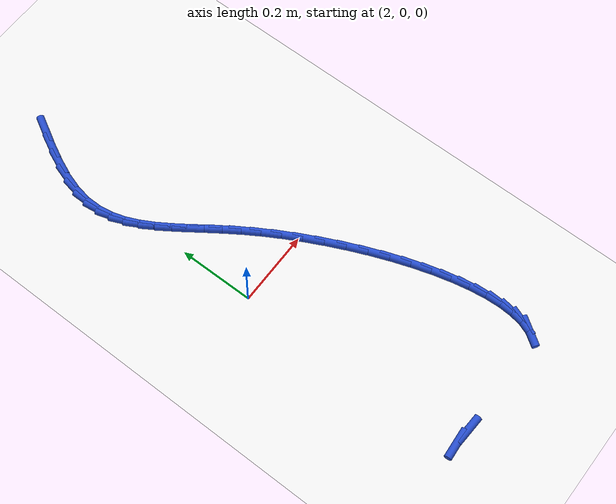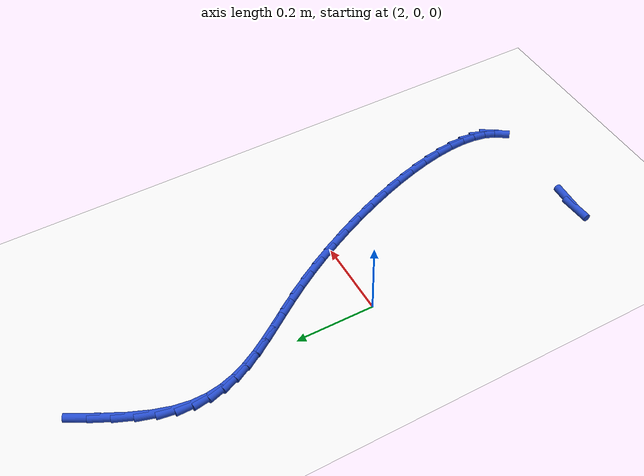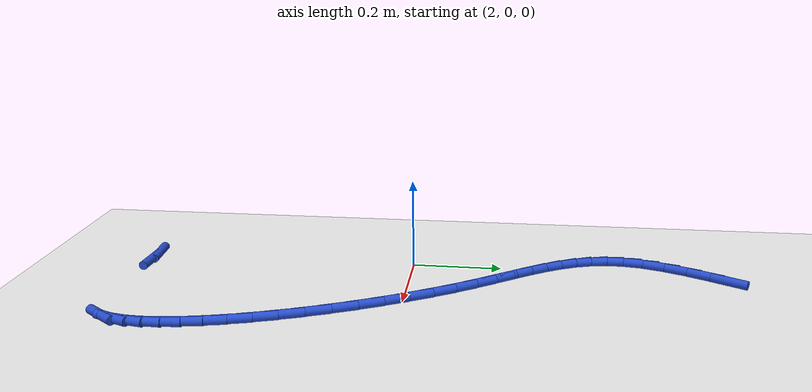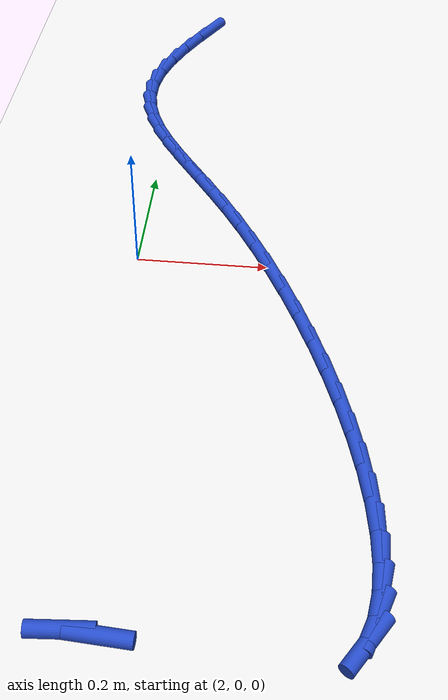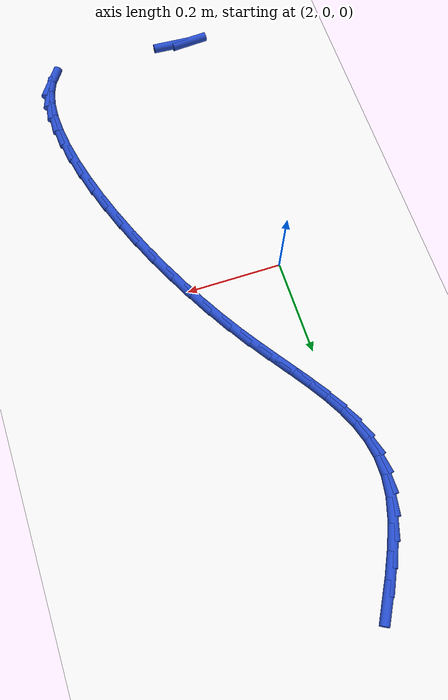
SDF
<sdf version="1.6">
 <world name="default">
  <model name="ground_plane">
   <static>1</static>
   <link name="link">
    <collision name="collision">
     <geometry><plane><normal>0 0 1</normal><size>100 100</size></plane></geometry>
     <surface><friction><ode><mu>100</mu><mu2>50</mu2></ode></friction></surface>
    </collision>
    <visual name="visual">
     <cast_shadows>0</cast_shadows>
     <geometry><plane><normal>0 0 1</normal><size>100 100</size></plane></geometry>
     <material>
      <script><uri>file://media/materials/scripts/gazebo.material</uri><name>Gazebo/WhiteGlow</name></script>
     </material>
    </visual>
   </link>
  </model>
  <model name="line">
   <link name="link_83">
    <pose>2.0431133323476156 0.6932985555934026 0.01 0 1.57 1.0614998646317197</pose>
    <collision name="collision">
     <geometry><cylinder><radius>0.01</radius><length>0.08</length></cylinder></geometry>
    </collision>
    <visual name="visual">
     <material>
      <script><name>Gazebo/Blue</name><uri>file://media/materials/scripts/gazebo.material</uri></script>
     </material>
     <geometry><cylinder><radius>0.01</radius><length>0.08</length></cylinder></geometry>
    </visual>
   </link>
   <link name="link_84">
    <pose>2.017967462171826 0.6482694091060096 0.01 0 1.57 1.1041395100261295</pose>
    <collision name="collision">
     <geometry><cylinder><radius>0.01</radius><length>0.08</length></cylinder></geometry>
    </collision>
    <visual name="visual">
     <material>
      <script><name>Gazebo/Blue</name><uri>file://media/materials/scripts/gazebo.material</uri></script>
     </material>
     <geometry><cylinder><radius>0.01</radius><length>0.08</length></cylinder></geometry>
    </visual>
   </link>
   <link name="link_85">
    <pose>1.9952484615092723 0.6031711947934654 0.01 0 1.57 1.1704571502569319</pose>
    <collision name="collision">
     <geometry><cylinder><radius>0.01</radius><length>0.08</length></cylinder></geometry>
    </collision>
    <visual name="visual">
     <material>
      <script><name>Gazebo/Blue</name><uri>file://media/materials/scripts/gazebo.material</uri></script>
     </material>
     <geometry><cylinder><radius>0.01</radius><length>0.08</length></cylinder></geometry>
    </visual>
   </link>
   <link name="link_86">
    <pose>1.9765351278864305 0.5589518196990823 0.01 0 1.57 1.270466448657315</pose>
    <collision name="collision">
     <geometry><cylinder><radius>0.01</radius><length>0.08</length></cylinder></geometry>
    </collision>
    <visual name="visual">
     <material>
      <script><name>Gazebo/Blue</name><uri>file://media/materials/scripts/gazebo.material</uri></script>
     </material>
     <geometry><cylinder><radius>0.01</radius><length>0.08</length></cylinder></geometry>
    </visual>
   </link>
   <link name="link_87">
    <pose>1.9634062189785981 0.5165591651132039 0.01 0 1.57 1.4118136456308739</pose>
    <collision name="collision">
     <geometry><cylinder><radius>0.01</radius><length>0.08</length></cylinder></geometry>
    </collision>
    <visual name="visual">
     <material>
      <script><name>Gazebo/Blue</name><uri>file://media/materials/scripts/gazebo.material</uri></script>
     </material>
     <geometry><cylinder><radius>0.01</radius><length>0.08</length></cylinder></geometry>
    </visual>
   </link>
   <link name="link_88">
    <pose>1.9570093542885636 0.47666249854449233 0.01 0 1.57 1.5704276392934948</pose>
    <collision name="collision">
     <geometry><cylinder><radius>0.01</radius><length>0.08</length></cylinder></geometry>
    </collision>
    <visual name="visual">
     <material>
      <script><name>Gazebo/Blue</name><uri>file://media/materials/scripts/gazebo.material</uri></script>
     </material>
     <geometry><cylinder><radius>0.01</radius><length>0.08</length></cylinder></geometry>
    </visual>
   </link>
   <link name="link_89">
    <pose>1.9569954552779205 0.4389638785466133 0.01 0 1.57 -1.4139260196698673</pose>
    <collision name="collision">
     <geometry><cylinder><radius>0.01</radius><length>0.08</length></cylinder></geometry>
    </collision>
    <visual name="visual">
     <material>
      <script><name>Gazebo/Blue</name><uri>file://media/materials/scripts/gazebo.material</uri></script>
     </material>
     <geometry><cylinder><radius>0.01</radius><length>0.08</length></cylinder></geometry>
    </visual>
   </link>
   <link name="link_90">
    <pose>1.9626908769483928 0.40295561957132314 0.01 0 1.57 -1.2718899933395225</pose>
    <collision name="collision">
     <geometry><cylinder><radius>0.01</radius><length>0.08</length></cylinder></geometry>
    </collision>
    <visual name="visual">
     <material>
      <script><name>Gazebo/Blue</name><uri>file://media/materials/scripts/gazebo.material</uri></script>
     </material>
     <geometry><cylinder><radius>0.01</radius><length>0.08</length></cylinder></geometry>
    </visual>
   </link>
   <link name="link_91">
    <pose>1.9734219743017019 0.36813003607037786 0.01 0 1.57 -1.1546502212319745</pose>
    <collision name="collision">
     <geometry><cylinder><radius>0.01</radius><length>0.08</length></cylinder></geometry>
    </collision>
    <visual name="visual">
     <material>
      <script><name>Gazebo/Blue</name><uri>file://media/materials/scripts/gazebo.material</uri></script>
     </material>
     <geometry><cylinder><radius>0.01</radius><length>0.08</length></cylinder></geometry>
    </visual>
   </link>
   <link name="link_92">
    <pose>1.988515102339571 0.333979442495534 0.01 0 1.57 -1.0659062156361725</pose>
    <collision name="collision">
     <geometry><cylinder><radius>0.01</radius><length>0.08</length></cylinder></geometry>
    </collision>
    <visual name="visual">
     <material>
      <script><name>Gazebo/Blue</name><uri>file://media/materials/scripts/gazebo.material</uri></script>
     </material>
     <geometry><cylinder><radius>0.01</radius><length>0.08</length></cylinder></geometry>
    </visual>
   </link>
   <link name="link_93">
    <pose>2.0072966160637224 0.2999961532985476 0.01 0 1.57 -1.0050232707989921</pose>
    <collision name="collision">
     <geometry><cylinder><radius>0.01</radius><length>0.08</length></cylinder></geometry>
    </collision>
    <visual name="visual">
     <material>
      <script><name>Gazebo/Blue</name><uri>file://media/materials/scripts/gazebo.material</uri></script>
     </material>
     <geometry><cylinder><radius>0.01</radius><length>0.08</length></cylinder></geometry>
    </visual>
   </link>
   <link name="link_94">
    <pose>2.0290928704758793 0.265672482931175 0.01 0 1.57 -0.9693438722240519</pose>
    <collision name="collision">
     <geometry><cylinder><radius>0.01</radius><length>0.08</length></cylinder></geometry>
    </collision>
    <visual name="visual">
     <material>
      <script><name>Gazebo/Blue</name><uri>file://media/materials/scripts/gazebo.material</uri></script>
     </material>
     <geometry><cylinder><radius>0.01</radius><length>0.08</length></cylinder></geometry>
    </visual>
   </link>
   <link name="link_95">
    <pose>2.053230220577764 0.2305007458451725 0.01 0 1.57 -0.9557554124685063</pose>
    <collision name="collision">
     <geometry><cylinder><radius>0.01</radius><length>0.08</length></cylinder></geometry>
    </collision>
    <visual name="visual">
     <material>
      <script><name>Gazebo/Blue</name><uri>file://media/materials/scripts/gazebo.material</uri></script>
     </material>
     <geometry><cylinder><radius>0.01</radius><length>0.08</length></cylinder></geometry>
    </visual>
   </link>
   <link name="link_96">
    <pose>2.079035021371098 0.1939732564922966 0.01 0 1.57 -0.9613834429195927</pose>
    <collision name="collision">
     <geometry><cylinder><radius>0.01</radius><length>0.08</length></cylinder></geometry>
    </collision>
    <visual name="visual">
     <material>
      <script><name>Gazebo/Blue</name><uri>file://media/materials/scripts/gazebo.material</uri></script>
     </material>
     <geometry><cylinder><radius>0.01</radius><length>0.08</length></cylinder></geometry>
    </visual>
   </link>
   <link name="link_97">
    <pose>2.1058336278576055 0.15558232932430288 0.01 0 1.57 -0.9837443000496273</pose>
    <collision name="collision">
     <geometry><cylinder><radius>0.01</radius><length>0.08</length></cylinder></geometry>
    </collision>
    <visual name="visual">
     <material>
      <script><name>Gazebo/Blue</name><uri>file://media/materials/scripts/gazebo.material</uri></script>
     </material>
     <geometry><cylinder><radius>0.01</radius><length>0.08</length></cylinder></geometry>
    </visual>
   </link>
   <link name="link_98">
    <pose>2.1329523950575506 0.11482027883869896 0.01 0 1.57 -1.017732540229307</pose>
    <collision name="collision">
     <geometry><cylinder><radius>0.01</radius><length>0.08</length></cylinder></geometry>
    </collision>
    <visual name="visual">
     <material>
      <script><name>Gazebo/Blue</name><uri>file://media/materials/scripts/gazebo.material</uri></script>
     </material>
     <geometry><cylinder><radius>0.01</radius><length>0.08</length></cylinder></geometry>
    </visual>
   </link>
   <link name="link_99">
    <pose>2.1597872192897163 0.07135100904549321 0.01 0 1.57 -1.0512288884947227</pose>
    <collision name="collision">
     <geometry><cylinder><radius>0.01</radius><length>0.08</length></cylinder></geometry>
    </collision>
    <visual name="visual">
     <material>
      <script><name>Gazebo/Blue</name><uri>file://media/materials/scripts/gazebo.material</uri></script>
     </material>
     <geometry><cylinder><radius>0.01</radius><length>0.08</length></cylinder></geometry>
    </visual>
   </link>
   <link name="link_100">
    <pose>2.186006808669583 0.02551157277699726 0.01 0 1.57 -1.0825385148101219</pose>
    <collision name="collision">
     <geometry><cylinder><radius>0.01</radius><length>0.08</length></cylinder></geometry>
    </collision>
    <visual name="visual">
     <material>
      <script><name>Gazebo/Blue</name><uri>file://media/materials/scripts/gazebo.material</uri></script>
     </material>
     <geometry><cylinder><radius>0.01</radius><length>0.08</length></cylinder></geometry>
    </visual>
   </link>
   <link name="link_101">
    <pose>2.211346761570984 -0.022195928924760657 0.01 0 1.57 -1.1127201873429595</pose>
    <collision name="collision">
     <geometry><cylinder><radius>0.01</radius><length>0.08</length></cylinder></geometry>
    </collision>
    <visual name="visual">
     <material>
      <script><name>Gazebo/Blue</name><uri>file://media/materials/scripts/gazebo.material</uri></script>
     </material>
     <geometry><cylinder><radius>0.01</radius><length>0.08</length></cylinder></geometry>
    </visual>
   </link>
   <link name="link_102">
    <pose>2.2355426763677517 -0.0712693950177522 0.01 0 1.57 -1.1426979241254727</pose>
    <collision name="collision">
     <geometry><cylinder><radius>0.01</radius><length>0.08</length></cylinder></geometry>
    </collision>
    <visual name="visual">
     <material>
      <script><name>Gazebo/Blue</name><uri>file://media/materials/scripts/gazebo.material</uri></script>
     </material>
     <geometry><cylinder><radius>0.01</radius><length>0.08</length></cylinder></geometry>
    </visual>
   </link>
   <link name="link_103">
    <pose>2.25833015143372 -0.12120672445994893 0.01 0 1.57 -1.1733539925046712</pose>
    <collision name="collision">
     <geometry><cylinder><radius>0.01</radius><length>0.08</length></cylinder></geometry>
    </collision>
    <visual name="visual">
     <material>
      <script><name>Gazebo/Blue</name><uri>file://media/materials/scripts/gazebo.material</uri></script>
     </material>
     <geometry><cylinder><radius>0.01</radius><length>0.08</length></cylinder></geometry>
    </visual>
   </link>
   <link name="link_104">
    <pose>2.2794447851427218 -0.1715058162093228 0.01 0 1.57 -1.205611505874598</pose>
    <collision name="collision">
     <geometry><cylinder><radius>0.01</radius><length>0.08</length></cylinder></geometry>
    </collision>
    <visual name="visual">
     <material>
      <script><name>Gazebo/Blue</name><uri>file://media/materials/scripts/gazebo.material</uri></script>
     </material>
     <geometry><cylinder><radius>0.01</radius><length>0.08</length></cylinder></geometry>
    </visual>
   </link>
   <link name="link_105">
    <pose>2.2986221758685903 -0.22166456922384542 0.01 0 1.57 -1.2405220229955487</pose>
    <collision name="collision">
     <geometry><cylinder><radius>0.01</radius><length>0.08</length></cylinder></geometry>
    </collision>
    <visual name="visual">
     <material>
      <script><name>Gazebo/Blue</name><uri>file://media/materials/scripts/gazebo.material</uri></script>
     </material>
     <geometry><cylinder><radius>0.01</radius><length>0.08</length></cylinder></geometry>
    </visual>
   </link>
   <link name="link_106">
    <pose>2.3155979219851597 -0.2711808824614885 0.01 0 1.57 -1.2793742759026738</pose>
    <collision name="collision">
     <geometry><cylinder><radius>0.01</radius><length>0.08</length></cylinder></geometry>
    </collision>
    <visual name="visual">
     <material>
      <script><name>Gazebo/Blue</name><uri>file://media/materials/scripts/gazebo.material</uri></script>
     </material>
     <geometry><cylinder><radius>0.01</radius><length>0.08</length></cylinder></geometry>
    </visual>
   </link>
   <link name="link_107">
    <pose>2.3301076218662615 -0.3195526548802236 0.01 0 1.57 -1.3238452585081777</pose>
    <collision name="collision">
     <geometry><cylinder><radius>0.01</radius><length>0.08</length></cylinder></geometry>
    </collision>
    <visual name="visual">
     <material>
      <script><name>Gazebo/Blue</name><uri>file://media/materials/scripts/gazebo.material</uri></script>
     </material>
     <geometry><cylinder><radius>0.01</radius><length>0.08</length></cylinder></geometry>
    </visual>
   </link>
   <link name="link_108">
    <pose>2.34188687388573 -0.3662777854380227 0.01 0 1.57 -1.3762254036785686</pose>
    <collision name="collision">
     <geometry><cylinder><radius>0.01</radius><length>0.08</length></cylinder></geometry>
    </collision>
    <visual name="visual">
     <material>
      <script><name>Gazebo/Blue</name><uri>file://media/materials/scripts/gazebo.material</uri></script>
     </material>
     <geometry><cylinder><radius>0.01</radius><length>0.08</length></cylinder></geometry>
    </visual>
   </link>
   <link name="link_109">
    <pose>2.350671276417398 -0.4108541730928572 0.01 0 1.57 -1.439766539282092</pose>
    <collision name="collision">
     <geometry><cylinder><radius>0.01</radius><length>0.08</length></cylinder></geometry>
    </collision>
    <visual name="visual">
     <material>
      <script><name>Gazebo/Blue</name><uri>file://media/materials/scripts/gazebo.material</uri></script>
     </material>
     <geometry><cylinder><radius>0.01</radius><length>0.08</length></cylinder></geometry>
    </visual>
   </link>
   <link name="link_110">
    <pose>2.3561964278350995 -0.45277971680269896 0.01 0 1.57 -1.5192206333494063</pose>
    <collision name="collision">
     <geometry><cylinder><radius>0.01</radius><length>0.08</length></cylinder></geometry>
    </collision>
    <visual name="visual">
     <material>
      <script><name>Gazebo/Blue</name><uri>file://media/materials/scripts/gazebo.material</uri></script>
     </material>
     <geometry><cylinder><radius>0.01</radius><length>0.08</length></cylinder></geometry>
    </visual>
   </link>
   <link name="link_111">
    <pose>2.358197926512668 -0.4915523155255198 0.01 0 1.57 1.5199665659913784</pose>
    <collision name="collision">
     <geometry><cylinder><radius>0.01</radius><length>0.08</length></cylinder></geometry>
    </collision>
    <visual name="visual">
     <material>
      <script><name>Gazebo/Blue</name><uri>file://media/materials/scripts/gazebo.material</uri></script>
     </material>
     <geometry><cylinder><radius>0.01</radius><length>0.08</length></cylinder></geometry>
    </visual>
   </link>
   <link name="link_112">
    <pose>2.356411370823935 -0.5266698682192914 0.01 0 1.57 1.3843897157157312</pose>
    <collision name="collision">
     <geometry><cylinder><radius>0.01</radius><length>0.08</length></cylinder></geometry>
    </collision>
    <visual name="visual">
     <material>
      <script><name>Gazebo/Blue</name><uri>file://media/materials/scripts/gazebo.material</uri></script>
     </material>
     <geometry><cylinder><radius>0.01</radius><length>0.08</length></cylinder></geometry>
    </visual>
   </link>
   <link name="link_113">
    <pose>2.3505723591427348 -0.5576302738419852 0.01 0 1.57 1.2022970015694876</pose>
    <collision name="collision">
     <geometry><cylinder><radius>0.01</radius><length>0.08</length></cylinder></geometry>
    </collision>
    <visual name="visual">
     <material>
      <script><name>Gazebo/Blue</name><uri>file://media/materials/scripts/gazebo.material</uri></script>
     </material>
     <geometry><cylinder><radius>0.01</radius><length>0.08</length></cylinder></geometry>
    </visual>
   </link>
   <link name="link_114">
    <pose>2.340416489842901 -0.583931431351573 0.01 0 1.57 0.9620012378313336</pose>
    <collision name="collision">
     <geometry><cylinder><radius>0.01</radius><length>0.08</length></cylinder></geometry>
    </collision>
    <visual name="visual">
     <material>
      <script><name>Gazebo/Blue</name><uri>file://media/materials/scripts/gazebo.material</uri></script>
     </material>
     <geometry><cylinder><radius>0.01</radius><length>0.08</length></cylinder></geometry>
    </visual>
   </link>
   <link name="link_123">
    <pose>2.0520244405306665 -0.6029583111927083 0.01 0 1.57 -0.05604993894826036</pose>
    <collision name="collision">
     <geometry><cylinder><radius>0.01</radius><length>0.08</length></cylinder></geometry>
    </collision>
    <visual name="visual">
     <material>
      <script><name>Gazebo/Blue</name><uri>file://media/materials/scripts/gazebo.material</uri></script>
     </material>
     <geometry><cylinder><radius>0.01</radius><length>0.08</length></cylinder></geometry>
    </visual>
   </link>
   <link name="link_124">
    <pose>2.0090212572750485 -0.6005454581310603 0.01 0 1.57 0.0680421786399893</pose>
    <collision name="collision">
     <geometry><cylinder><radius>0.01</radius><length>0.08</length></cylinder></geometry>
    </collision>
    <visual name="visual">
     <material>
      <script><name>Gazebo/Blue</name><uri>file://media/materials/scripts/gazebo.material</uri></script>
     </material>
     <geometry><cylinder><radius>0.01</radius><length>0.08</length></cylinder></geometry>
    </visual>
   </link>
  </model>
 </world>
</sdf>
